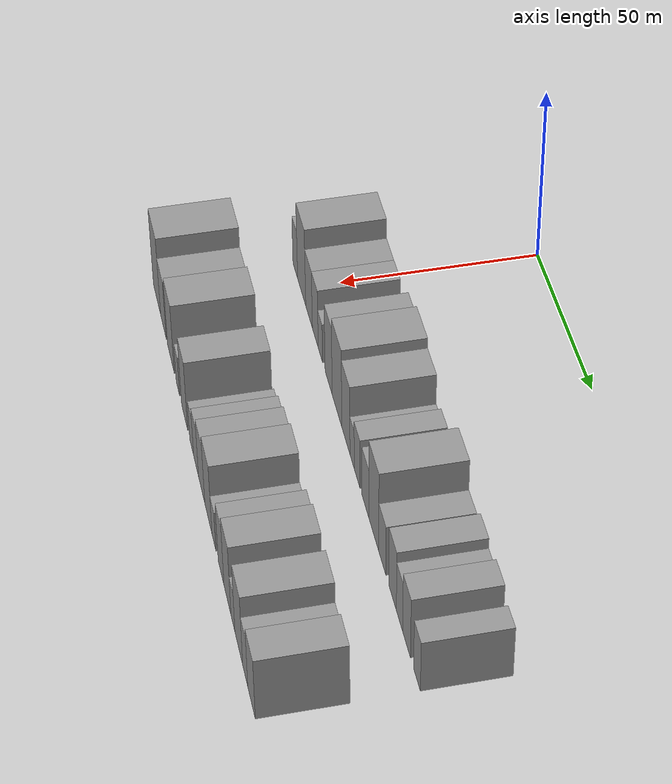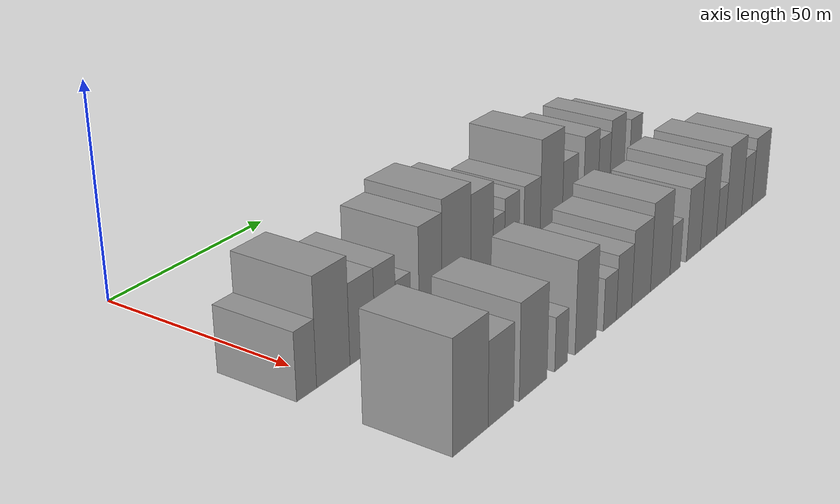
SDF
<sdf version="1.6">
 <world name="default">
  <model name="building_33">
   <static>1</static>
   <pose>50.0000 -6.7014 0 0.000000 0.000000 0.000000</pose>
   <link name="link">
    <pose>0 0 7.50 0 0 0</pose>
    <collision name="collision"><geometry><box><size>20.0000 6.0345 15.0000</size></box></geometry></collision>
    <visual name="visual">
     <cast_shadows>0</cast_shadows>
     <geometry><box><size>20.0000 6.0345 15.0000</size></box></geometry>
     <material>
      <script>
       <uri>model://grey_wall/materials/scripts</uri>
       <uri>model://grey_wall/materials/textures</uri>
       <name>vrc/grey_wall</name>
      </script>
     </material>
    </visual>
   </link>
  </model>
  <model name="building_34">
   <static>1</static>
   <pose>50.0000 1.5610 0 0.000000 0.000000 0.000000</pose>
   <link name="link">
    <pose>0 0 12.00 0 0 0</pose>
    <collision name="collision"><geometry><box><size>20.0000 10.4904 24.0000</size></box></geometry></collision>
    <visual name="visual">
     <cast_shadows>0</cast_shadows>
     <geometry><box><size>20.0000 10.4904 24.0000</size></box></geometry>
     <material>
      <script>
       <uri>model://grey_wall/materials/scripts</uri>
       <uri>model://grey_wall/materials/textures</uri>
       <name>vrc/grey_wall</name>
      </script>
     </material>
    </visual>
   </link>
  </model>
  <model name="building_35">
   <static>1</static>
   <pose>50.0000 10.9428 0 0.000000 0.000000 0.000000</pose>
   <link name="link">
    <pose>0 0 9.00 0 0 0</pose>
    <collision name="collision"><geometry><box><size>20.0000 8.2730 18.0000</size></box></geometry></collision>
    <visual name="visual">
     <cast_shadows>0</cast_shadows>
     <geometry><box><size>20.0000 8.2730 18.0000</size></box></geometry>
     <material>
      <script>
       <uri>model://grey_wall/materials/scripts</uri>
       <uri>model://grey_wall/materials/textures</uri>
       <name>vrc/grey_wall</name>
      </script>
     </material>
    </visual>
   </link>
  </model>
  <model name="building_36">
   <static>1</static>
   <pose>50.0000 18.6821 0 0.000000 0.000000 0.000000</pose>
   <link name="link">
    <pose>0 0 9.00 0 0 0</pose>
    <collision name="collision"><geometry><box><size>20.0000 7.2055 18.0000</size></box></geometry></collision>
    <visual name="visual">
     <cast_shadows>0</cast_shadows>
     <geometry><box><size>20.0000 7.2055 18.0000</size></box></geometry>
     <material>
      <script>
       <uri>model://grey_wall/materials/scripts</uri>
       <uri>model://grey_wall/materials/textures</uri>
       <name>vrc/grey_wall</name>
      </script>
     </material>
    </visual>
   </link>
  </model>
  <model name="building_37">
   <static>1</static>
   <pose>50.0000 24.9326 0 0.000000 0.000000 0.000000</pose>
   <link name="link">
    <pose>0 0 6.00 0 0 0</pose>
    <collision name="collision"><geometry><box><size>20.0000 5.2955 12.0000</size></box></geometry></collision>
    <visual name="visual">
     <cast_shadows>0</cast_shadows>
     <geometry><box><size>20.0000 5.2955 12.0000</size></box></geometry>
     <material>
      <script>
       <uri>model://grey_wall/materials/scripts</uri>
       <uri>model://grey_wall/materials/textures</uri>
       <name>vrc/grey_wall</name>
      </script>
     </material>
    </visual>
   </link>
  </model>
  <model name="building_38">
   <static>1</static>
   <pose>50.0000 34.8326 0 0.000000 0.000000 0.000000</pose>
   <link name="link">
    <pose>0 0 10.50 0 0 0</pose>
    <collision name="collision"><geometry><box><size>20.0000 8.5047 21.0000</size></box></geometry></collision>
    <visual name="visual">
     <cast_shadows>0</cast_shadows>
     <geometry><box><size>20.0000 8.5047 21.0000</size></box></geometry>
     <material>
      <script>
       <uri>model://grey_wall/materials/scripts</uri>
       <uri>model://grey_wall/materials/textures</uri>
       <name>vrc/grey_wall</name>
      </script>
     </material>
    </visual>
   </link>
  </model>
  <model name="building_39">
   <static>1</static>
   <pose>50.0000 44.6915 0 0.000000 0.000000 0.000000</pose>
   <link name="link">
    <pose>0 0 12.00 0 0 0</pose>
    <collision name="collision"><geometry><box><size>20.0000 11.2131 24.0000</size></box></geometry></collision>
    <visual name="visual">
     <cast_shadows>0</cast_shadows>
     <geometry><box><size>20.0000 11.2131 24.0000</size></box></geometry>
     <material>
      <script>
       <uri>model://grey_wall/materials/scripts</uri>
       <uri>model://grey_wall/materials/textures</uri>
       <name>vrc/grey_wall</name>
      </script>
     </material>
    </visual>
   </link>
  </model>
  <model name="building_40">
   <static>1</static>
   <pose>50.0000 54.8790 0 0.000000 0.000000 0.000000</pose>
   <link name="link">
    <pose>0 0 10.50 0 0 0</pose>
    <collision name="collision"><geometry><box><size>20.0000 9.1619 21.0000</size></box></geometry></collision>
    <visual name="visual">
     <cast_shadows>0</cast_shadows>
     <geometry><box><size>20.0000 9.1619 21.0000</size></box></geometry>
     <material>
      <script>
       <uri>model://grey_wall/materials/scripts</uri>
       <uri>model://grey_wall/materials/textures</uri>
       <name>vrc/grey_wall</name>
      </script>
     </material>
    </visual>
   </link>
  </model>
  <model name="building_41">
   <static>1</static>
   <pose>50.0000 61.8659 0 0.000000 0.000000 0.000000</pose>
   <link name="link">
    <pose>0 0 6.00 0 0 0</pose>
    <collision name="collision"><geometry><box><size>20.0000 4.8118 12.0000</size></box></geometry></collision>
    <visual name="visual">
     <cast_shadows>0</cast_shadows>
     <geometry><box><size>20.0000 4.8118 12.0000</size></box></geometry>
     <material>
      <script>
       <uri>model://grey_wall/materials/scripts</uri>
       <uri>model://grey_wall/materials/textures</uri>
       <name>vrc/grey_wall</name>
      </script>
     </material>
    </visual>
   </link>
  </model>
  <model name="building_42">
   <static>1</static>
   <pose>50.0000 67.4363 0 0.000000 0.000000 0.000000</pose>
   <link name="link">
    <pose>0 0 7.50 0 0 0</pose>
    <collision name="collision"><geometry><box><size>20.0000 6.3291 15.0000</size></box></geometry></collision>
    <visual name="visual">
     <cast_shadows>0</cast_shadows>
     <geometry><box><size>20.0000 6.3291 15.0000</size></box></geometry>
     <material>
      <script>
       <uri>model://grey_wall/materials/scripts</uri>
       <uri>model://grey_wall/materials/textures</uri>
       <name>vrc/grey_wall</name>
      </script>
     </material>
    </visual>
   </link>
  </model>
  <model name="building_43">
   <static>1</static>
   <pose>50.0000 76.3273 0 0.000000 0.000000 0.000000</pose>
   <link name="link">
    <pose>0 0 7.50 0 0 0</pose>
    <collision name="collision"><geometry><box><size>20.0000 7.4528 15.0000</size></box></geometry></collision>
    <visual name="visual">
     <cast_shadows>0</cast_shadows>
     <geometry><box><size>20.0000 7.4528 15.0000</size></box></geometry>
     <material>
      <script>
       <uri>model://grey_wall/materials/scripts</uri>
       <uri>model://grey_wall/materials/textures</uri>
       <name>vrc/grey_wall</name>
      </script>
     </material>
    </visual>
   </link>
  </model>
  <model name="building_44">
   <static>1</static>
   <pose>50.0000 85.2699 0 0.000000 0.000000 0.000000</pose>
   <link name="link">
    <pose>0 0 12.00 0 0 0</pose>
    <collision name="collision"><geometry><box><size>20.0000 10.4325 24.0000</size></box></geometry></collision>
    <visual name="visual">
     <cast_shadows>0</cast_shadows>
     <geometry><box><size>20.0000 10.4325 24.0000</size></box></geometry>
     <material>
      <script>
       <uri>model://grey_wall/materials/scripts</uri>
       <uri>model://grey_wall/materials/textures</uri>
       <name>vrc/grey_wall</name>
      </script>
     </material>
    </visual>
   </link>
  </model>
  <model name="building_45">
   <static>1</static>
   <pose>50.0000 94.1355 0 0.000000 0.000000 0.000000</pose>
   <link name="link">
    <pose>0 0 7.50 0 0 0</pose>
    <collision name="collision"><geometry><box><size>20.0000 7.2986 15.0000</size></box></geometry></collision>
    <visual name="visual">
     <cast_shadows>0</cast_shadows>
     <geometry><box><size>20.0000 7.2986 15.0000</size></box></geometry>
     <material>
      <script>
       <uri>model://grey_wall/materials/scripts</uri>
       <uri>model://grey_wall/materials/textures</uri>
       <name>vrc/grey_wall</name>
      </script>
     </material>
    </visual>
   </link>
  </model>
  <model name="building_46">
   <static>1</static>
   <pose>50.0000 104.5383 0 0.000000 0.000000 0.000000</pose>
   <link name="link">
    <pose>0 0 9.00 0 0 0</pose>
    <collision name="collision"><geometry><box><size>20.0000 7.5070 18.0000</size></box></geometry></collision>
    <visual name="visual">
     <cast_shadows>0</cast_shadows>
     <geometry><box><size>20.0000 7.5070 18.0000</size></box></geometry>
     <material>
      <script>
       <uri>model://grey_wall/materials/scripts</uri>
       <uri>model://grey_wall/materials/textures</uri>
       <name>vrc/grey_wall</name>
      </script>
     </material>
    </visual>
   </link>
  </model>
  <model name="building_47">
   <static>1</static>
   <pose>50.0000 111.3633 0 0.000000 0.000000 0.000000</pose>
   <link name="link">
    <pose>0 0 7.50 0 0 0</pose>
    <collision name="collision"><geometry><box><size>20.0000 6.1431 15.0000</size></box></geometry></collision>
    <visual name="visual">
     <cast_shadows>0</cast_shadows>
     <geometry><box><size>20.0000 6.1431 15.0000</size></box></geometry>
     <material>
      <script>
       <uri>model://grey_wall/materials/scripts</uri>
       <uri>model://grey_wall/materials/textures</uri>
       <name>vrc/grey_wall</name>
      </script>
     </material>
    </visual>
   </link>
  </model>
  <model name="building_48">
   <static>1</static>
   <pose>50.0000 118.2187 0 0.000000 0.000000 0.000000</pose>
   <link name="link">
    <pose>0 0 9.00 0 0 0</pose>
    <collision name="collision"><geometry><box><size>20.0000 7.5677 18.0000</size></box></geometry></collision>
    <visual name="visual">
     <cast_shadows>0</cast_shadows>
     <geometry><box><size>20.0000 7.5677 18.0000</size></box></geometry>
     <material>
      <script>
       <uri>model://grey_wall/materials/scripts</uri>
       <uri>model://grey_wall/materials/textures</uri>
       <name>vrc/grey_wall</name>
      </script>
     </material>
    </visual>
   </link>
  </model>
  <model name="building_49">
   <static>1</static>
   <pose>50.0000 128.1905 0 0.000000 0.000000 0.000000</pose>
   <link name="link">
    <pose>0 0 7.50 0 0 0</pose>
    <collision name="collision"><geometry><box><size>20.0000 6.3759 15.0000</size></box></geometry></collision>
    <visual name="visual">
     <cast_shadows>0</cast_shadows>
     <geometry><box><size>20.0000 6.3759 15.0000</size></box></geometry>
     <material>
      <script>
       <uri>model://grey_wall/materials/scripts</uri>
       <uri>model://grey_wall/materials/textures</uri>
       <name>vrc/grey_wall</name>
      </script>
     </material>
    </visual>
   </link>
  </model>
  <model name="building_101">
   <static>1</static>
   <pose>85.0000 -3.1474 0 0.000000 0.000000 0.000000</pose>
   <link name="link">
    <pose>0 0 12.00 0 0 0</pose>
    <collision name="collision"><geometry><box><size>20.0000 11.6512 24.0000</size></box></geometry></collision>
    <visual name="visual">
     <cast_shadows>0</cast_shadows>
     <geometry><box><size>20.0000 11.6512 24.0000</size></box></geometry>
     <material>
      <script>
       <uri>model://grey_wall/materials/scripts</uri>
       <uri>model://grey_wall/materials/textures</uri>
       <name>vrc/grey_wall</name>
      </script>
     </material>
    </visual>
   </link>
  </model>
  <model name="building_102">
   <static>1</static>
   <pose>85.0000 7.1366 0 0.000000 0.000000 0.000000</pose>
   <link name="link">
    <pose>0 0 9.00 0 0 0</pose>
    <collision name="collision"><geometry><box><size>20.0000 8.9169 18.0000</size></box></geometry></collision>
    <visual name="visual">
     <cast_shadows>0</cast_shadows>
     <geometry><box><size>20.0000 8.9169 18.0000</size></box></geometry>
     <material>
      <script>
       <uri>model://grey_wall/materials/scripts</uri>
       <uri>model://grey_wall/materials/textures</uri>
       <name>vrc/grey_wall</name>
      </script>
     </material>
    </visual>
   </link>
  </model>
  <model name="building_103">
   <static>1</static>
   <pose>85.0000 18.7355 0 0.000000 0.000000 0.000000</pose>
   <link name="link">
    <pose>0 0 10.50 0 0 0</pose>
    <collision name="collision"><geometry><box><size>20.0000 10.2808 21.0000</size></box></geometry></collision>
    <visual name="visual">
     <cast_shadows>0</cast_shadows>
     <geometry><box><size>20.0000 10.2808 21.0000</size></box></geometry>
     <material>
      <script>
       <uri>model://grey_wall/materials/scripts</uri>
       <uri>model://grey_wall/materials/textures</uri>
       <name>vrc/grey_wall</name>
      </script>
     </material>
    </visual>
   </link>
  </model>
  <model name="building_104">
   <static>1</static>
   <pose>85.0000 29.3926 0 0.000000 0.000000 0.000000</pose>
   <link name="link">
    <pose>0 0 6.00 0 0 0</pose>
    <collision name="collision"><geometry><box><size>20.0000 5.0334 12.0000</size></box></geometry></collision>
    <visual name="visual">
     <cast_shadows>0</cast_shadows>
     <geometry><box><size>20.0000 5.0334 12.0000</size></box></geometry>
     <material>
      <script>
       <uri>model://grey_wall/materials/scripts</uri>
       <uri>model://grey_wall/materials/textures</uri>
       <name>vrc/grey_wall</name>
      </script>
     </material>
    </visual>
   </link>
  </model>
  <model name="building_105">
   <static>1</static>
   <pose>85.0000 39.3235 0 0.000000 0.000000 0.000000</pose>
   <link name="link">
    <pose>0 0 10.50 0 0 0</pose>
    <collision name="collision"><geometry><box><size>20.0000 8.8284 21.0000</size></box></geometry></collision>
    <visual name="visual">
     <cast_shadows>0</cast_shadows>
     <geometry><box><size>20.0000 8.8284 21.0000</size></box></geometry>
     <material>
      <script>
       <uri>model://grey_wall/materials/scripts</uri>
       <uri>model://grey_wall/materials/textures</uri>
       <name>vrc/grey_wall</name>
      </script>
     </material>
    </visual>
   </link>
  </model>
  <model name="building_106">
   <static>1</static>
   <pose>85.0000 49.5543 0 0.000000 0.000000 0.000000</pose>
   <link name="link">
    <pose>0 0 6.00 0 0 0</pose>
    <collision name="collision"><geometry><box><size>20.0000 5.6334 12.0000</size></box></geometry></collision>
    <visual name="visual">
     <cast_shadows>0</cast_shadows>
     <geometry><box><size>20.0000 5.6334 12.0000</size></box></geometry>
     <material>
      <script>
       <uri>model://grey_wall/materials/scripts</uri>
       <uri>model://grey_wall/materials/textures</uri>
       <name>vrc/grey_wall</name>
      </script>
     </material>
    </visual>
   </link>
  </model>
  <model name="building_107">
   <static>1</static>
   <pose>85.0000 55.8178 0 0.000000 0.000000 0.000000</pose>
   <link name="link">
    <pose>0 0 7.50 0 0 0</pose>
    <collision name="collision"><geometry><box><size>20.0000 6.8936 15.0000</size></box></geometry></collision>
    <visual name="visual">
     <cast_shadows>0</cast_shadows>
     <geometry><box><size>20.0000 6.8936 15.0000</size></box></geometry>
     <material>
      <script>
       <uri>model://grey_wall/materials/scripts</uri>
       <uri>model://grey_wall/materials/textures</uri>
       <name>vrc/grey_wall</name>
      </script>
     </material>
    </visual>
   </link>
  </model>
  <model name="building_108">
   <static>1</static>
   <pose>85.0000 63.6463 0 0.000000 0.000000 0.000000</pose>
   <link name="link">
    <pose>0 0 9.00 0 0 0</pose>
    <collision name="collision"><geometry><box><size>20.0000 8.7634 18.0000</size></box></geometry></collision>
    <visual name="visual">
     <cast_shadows>0</cast_shadows>
     <geometry><box><size>20.0000 8.7634 18.0000</size></box></geometry>
     <material>
      <script>
       <uri>model://grey_wall/materials/scripts</uri>
       <uri>model://grey_wall/materials/textures</uri>
       <name>vrc/grey_wall</name>
      </script>
     </material>
    </visual>
   </link>
  </model>
  <model name="building_109">
   <static>1</static>
   <pose>85.0000 72.8059 0 0.000000 0.000000 0.000000</pose>
   <link name="link">
    <pose>0 0 10.50 0 0 0</pose>
    <collision name="collision"><geometry><box><size>20.0000 9.5558 21.0000</size></box></geometry></collision>
    <visual name="visual">
     <cast_shadows>0</cast_shadows>
     <geometry><box><size>20.0000 9.5558 21.0000</size></box></geometry>
     <material>
      <script>
       <uri>model://grey_wall/materials/scripts</uri>
       <uri>model://grey_wall/materials/textures</uri>
       <name>vrc/grey_wall</name>
      </script>
     </material>
    </visual>
   </link>
  </model>
  <model name="building_110">
   <static>1</static>
   <pose>85.0000 80.2214 0 0.000000 0.000000 0.000000</pose>
   <link name="link">
    <pose>0 0 6.00 0 0 0</pose>
    <collision name="collision"><geometry><box><size>20.0000 5.2754 12.0000</size></box></geometry></collision>
    <visual name="visual">
     <cast_shadows>0</cast_shadows>
     <geometry><box><size>20.0000 5.2754 12.0000</size></box></geometry>
     <material>
      <script>
       <uri>model://grey_wall/materials/scripts</uri>
       <uri>model://grey_wall/materials/textures</uri>
       <name>vrc/grey_wall</name>
      </script>
     </material>
    </visual>
   </link>
  </model>
  <model name="building_111">
   <static>1</static>
   <pose>85.0000 89.5800 0 0.000000 0.000000 0.000000</pose>
   <link name="link">
    <pose>0 0 9.00 0 0 0</pose>
    <collision name="collision"><geometry><box><size>20.0000 7.4417 18.0000</size></box></geometry></collision>
    <visual name="visual">
     <cast_shadows>0</cast_shadows>
     <geometry><box><size>20.0000 7.4417 18.0000</size></box></geometry>
     <material>
      <script>
       <uri>model://grey_wall/materials/scripts</uri>
       <uri>model://grey_wall/materials/textures</uri>
       <name>vrc/grey_wall</name>
      </script>
     </material>
    </visual>
   </link>
  </model>
  <model name="building_112">
   <static>1</static>
   <pose>85.0000 97.7426 0 0.000000 0.000000 0.000000</pose>
   <link name="link">
    <pose>0 0 10.50 0 0 0</pose>
    <collision name="collision"><geometry><box><size>20.0000 8.8835 21.0000</size></box></geometry></collision>
    <visual name="visual">
     <cast_shadows>0</cast_shadows>
     <geometry><box><size>20.0000 8.8835 21.0000</size></box></geometry>
     <material>
      <script>
       <uri>model://grey_wall/materials/scripts</uri>
       <uri>model://grey_wall/materials/textures</uri>
       <name>vrc/grey_wall</name>
      </script>
     </material>
    </visual>
   </link>
  </model>
  <model name="building_113">
   <static>1</static>
   <pose>85.0000 104.6639 0 0.000000 0.000000 0.000000</pose>
   <link name="link">
    <pose>0 0 6.00 0 0 0</pose>
    <collision name="collision"><geometry><box><size>20.0000 4.9592 12.0000</size></box></geometry></collision>
    <visual name="visual">
     <cast_shadows>0</cast_shadows>
     <geometry><box><size>20.0000 4.9592 12.0000</size></box></geometry>
     <material>
      <script>
       <uri>model://grey_wall/materials/scripts</uri>
       <uri>model://grey_wall/materials/textures</uri>
       <name>vrc/grey_wall</name>
      </script>
     </material>
    </visual>
   </link>
  </model>
  <model name="building_114">
   <static>1</static>
   <pose>85.0000 111.8673 0 0.000000 0.000000 0.000000</pose>
   <link name="link">
    <pose>0 0 10.50 0 0 0</pose>
    <collision name="collision"><geometry><box><size>20.0000 9.4475 21.0000</size></box></geometry></collision>
    <visual name="visual">
     <cast_shadows>0</cast_shadows>
     <geometry><box><size>20.0000 9.4475 21.0000</size></box></geometry>
     <material>
      <script>
       <uri>model://grey_wall/materials/scripts</uri>
       <uri>model://grey_wall/materials/textures</uri>
       <name>vrc/grey_wall</name>
      </script>
     </material>
    </visual>
   </link>
  </model>
  <model name="building_115">
   <static>1</static>
   <pose>85.0000 119.6418 0 0.000000 0.000000 0.000000</pose>
   <link name="link">
    <pose>0 0 7.50 0 0 0</pose>
    <collision name="collision"><geometry><box><size>20.0000 6.1016 15.0000</size></box></geometry></collision>
    <visual name="visual">
     <cast_shadows>0</cast_shadows>
     <geometry><box><size>20.0000 6.1016 15.0000</size></box></geometry>
     <material>
      <script>
       <uri>model://grey_wall/materials/scripts</uri>
       <uri>model://grey_wall/materials/textures</uri>
       <name>vrc/grey_wall</name>
      </script>
     </material>
    </visual>
   </link>
  </model>
  <model name="building_116">
   <static>1</static>
   <pose>85.0000 127.1039 0 0.000000 0.000000 0.000000</pose>
   <link name="link">
    <pose>0 0 9.00 0 0 0</pose>
    <collision name="collision"><geometry><box><size>20.0000 8.8225 18.0000</size></box></geometry></collision>
    <visual name="visual">
     <cast_shadows>0</cast_shadows>
     <geometry><box><size>20.0000 8.8225 18.0000</size></box></geometry>
     <material>
      <script>
       <uri>model://grey_wall/materials/scripts</uri>
       <uri>model://grey_wall/materials/textures</uri>
       <name>vrc/grey_wall</name>
      </script>
     </material>
    </visual>
   </link>
  </model>
 </world>
</sdf>
